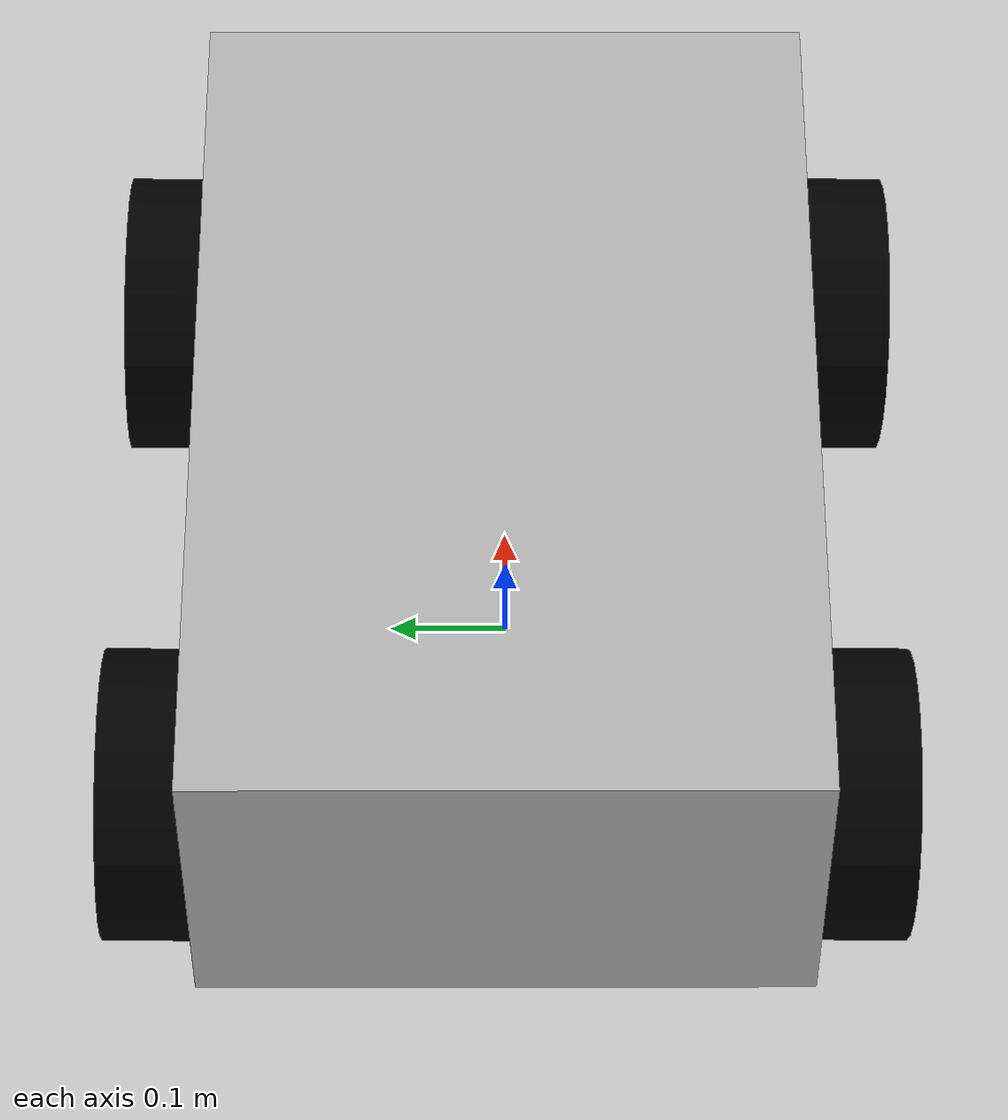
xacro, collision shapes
<?xml version="1.0"?>
<robot xmlns:xacro="http://www.ros.org/wiki/xacro" name="mpo_500">
    <!-- Sensors -->
    <xacro:include filename="$(find neo_robot_descriptions)/mpo_500/xacro_macros/sick_s300_laser.urdf.xacro" />
    <!-- Wheel Macro -->
    <xacro:include filename="$(find neo_robot_descriptions)/mpo_500/xacro_macros/omni_wheel.urdf.xacro" />
    <!-- Materials -->
    <xacro:include filename="$(find neo_robot_descriptions)/mpo_500/xacro_macros/materials.urdf.xacro"/>
    <!-- Base -->
    <xacro:include filename="$(find neo_robot_descriptions)/mpo_500/xacro_macros/mpo_500_body.urdf.xacro"/>

    <!-- ROBOT -->
    <!-- BODY -->
    <xacro:mpo_500_base name="base_link" />
    <!-- WHEELS -->
    <xacro:omni_wheel_250 name="wheel_front_left" parent="base_link">
        <origin xyz="0.25 0.28 0.13" rpy="0 0 0" />
    </xacro:omni_wheel_250>
    <xacro:omni_wheel_250 name="wheel_front_right" parent="base_link">
        <origin xyz="0.25 -0.28 0.13" rpy="0 0 0" />
    </xacro:omni_wheel_250>
    <xacro:omni_wheel_250 name="wheel_back_left" parent="base_link">
        <origin xyz="-0.25 0.28 0.13" rpy="0 0 0" />
    </xacro:omni_wheel_250>
    <xacro:omni_wheel_250 name="wheel_back_right" parent="base_link">
        <origin xyz="-0.25 -0.28 0.13" rpy="0 0 0" />
    </xacro:omni_wheel_250>

</robot>

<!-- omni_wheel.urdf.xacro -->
<robot xmlns:xacro="http://www.ros.org/wiki/xacro" name="mpo_500">

  <xacro:macro name="omni_wheel_250" params="name parent *origin">
   <joint name="${name}_joint" type="fixed">
    <insert_block name="origin" />
    <axis xyz="0 1 0" />
    <joint_properties damping="0.0" friction="0.0" />
    <parent link="${parent}" />
    <child link="${name}_link" />
   </joint>

   <link name="${name}_link" type="wheel">
    <inertial>
      <mass value="0.001" />
      <origin xyz="0 0 0" rpy="0 0 0" />
      <inertia ixx="0.0001" ixy="0" ixz="0" iyy="0.000001" iyz="0" izz="0.0001" />
    </inertial>

    <visual>
     <origin xyz="0 0 0" rpy="0 0 1.571" />
     <geometry>
        <mesh filename="package://neo_robot_descriptions/mpo_500/meshes/MPO-500-WHEEL.STL"/>
     </geometry>
     <material name="Neobotix/Black" />
    </visual>

    <collision>
     <origin xyz="0 0 0" rpy="1.59 0 0" />
     <geometry>
        <cylinder radius="0.12" length="0.1"/>
     </geometry>
    </collision>
   </link>

    <gazebo reference="${name}_link">
        <gravity>true</gravity>
        <self_collide>false</self_collide>
        <material value="Gazebo/Black"/>
    </gazebo>

  </xacro:macro>

</robot>

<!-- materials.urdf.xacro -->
<robot>
    <material name="Neobotix/Black">
        <color rgba="0.0 0.0 0.0 1.0"/>
    </material>

    <material name="Neobotix/Blue">
        <color rgba="0.0 0.0 0.8 1.0"/>
    </material>

    <material name="Neobotix/Green">
        <color rgba="0.0 0.8 0.0 1.0"/>
    </material>

    <material name="Neobotix/Grey">
        <color rgba="0.7 0.7 0.7 1.0"/>
    </material>

    <material name="Neobotix/Grey2">
        <color rgba="0.9 0.9 0.9 1.0"/>
    </material>

    <material name="Neobotix/Red">
        <color rgba="0.8 0.0 0.0 1.0"/>
    </material>

    <material name="Neobotix/White">
        <color rgba="1.0 1.0 1.0 1.0"/>
    </material>

    <material name="Neobotix/Yellow">
        <color rgba="1.0 1.0 0 10" />
    </material>
</robot>

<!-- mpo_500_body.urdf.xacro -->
<robot xmlns:xacro="http://www.ros.org/wiki/xacro" name="mpo_500">

  <xacro:macro name="mpo_500_base" params="name">
    <link name="${name}">
      <inertial>
        <mass value="20" />
        <origin xyz="0 0 0" rpy="0 0 0"/>
        <inertia ixx="1.0" ixy="0.0" ixz="0.0"
                 iyy="1.0" iyz="0.0"
                 izz="1.0" />
      </inertial>
      <visual>
        <origin xyz="0. 0. 0.215" rpy="0 0 1.571" />
        <geometry>
            <mesh filename="package://neo_robot_descriptions/mpo_500/meshes/MPO-500-BODY.STL"/>
        </geometry>
        <material name="Neobotix/Grey" />
      </visual>
      <collision>
        <origin xyz="0. 0. 0.2" rpy="0 0 0" />
        <geometry>
          <box size="0.769 0.51 0.307" />
        </geometry>
      </collision>
    </link>

    <gazebo reference="${name}">
      <gravity>true</gravity>
      <self_collide>false</self_collide>
      <material value="Gazebo/Grey"/>
    </gazebo>

  </xacro:macro>

</robot>
